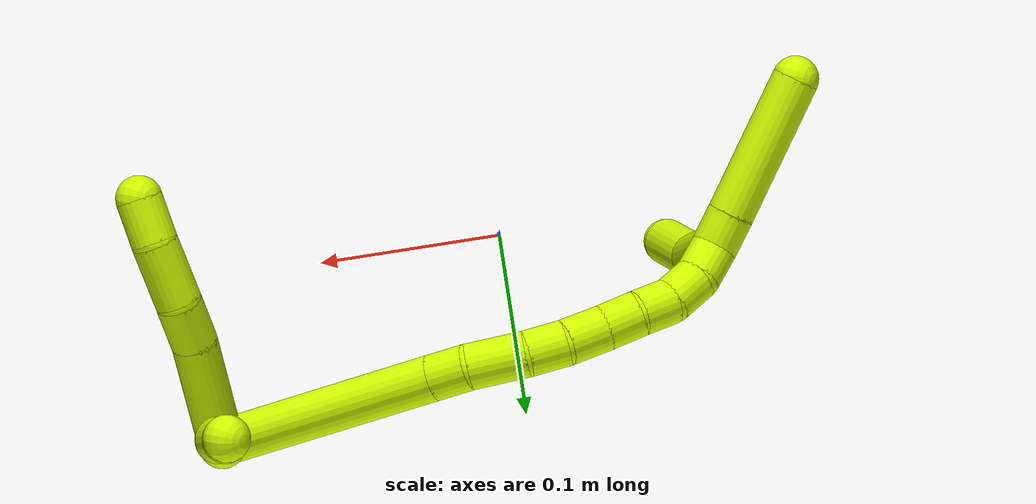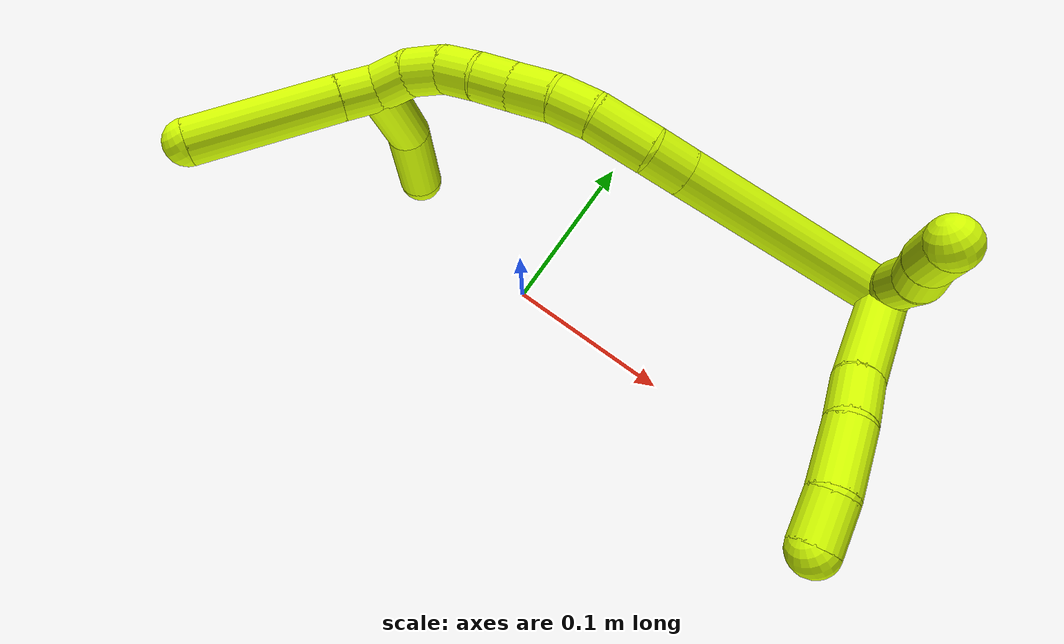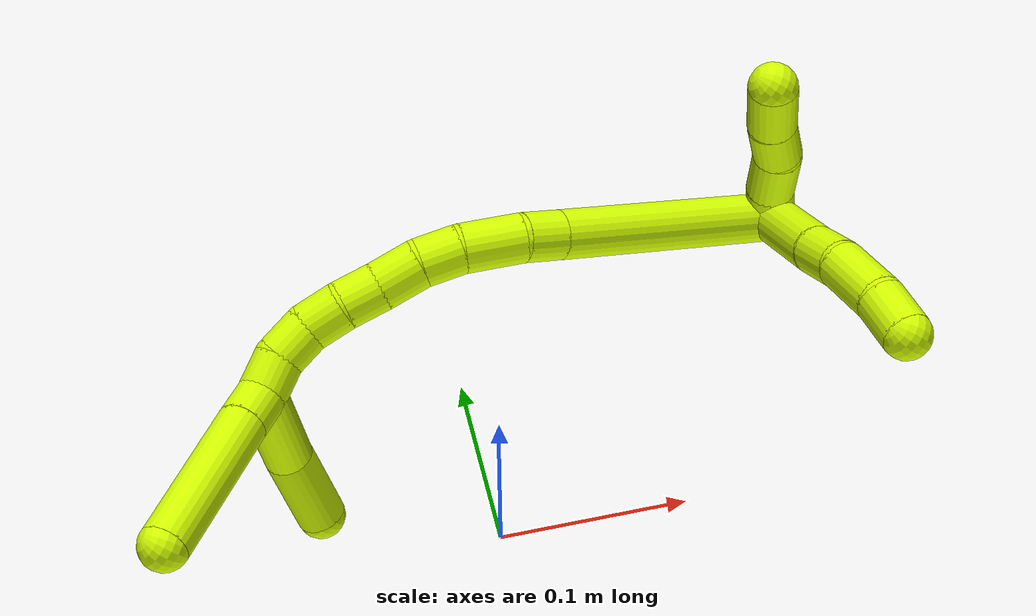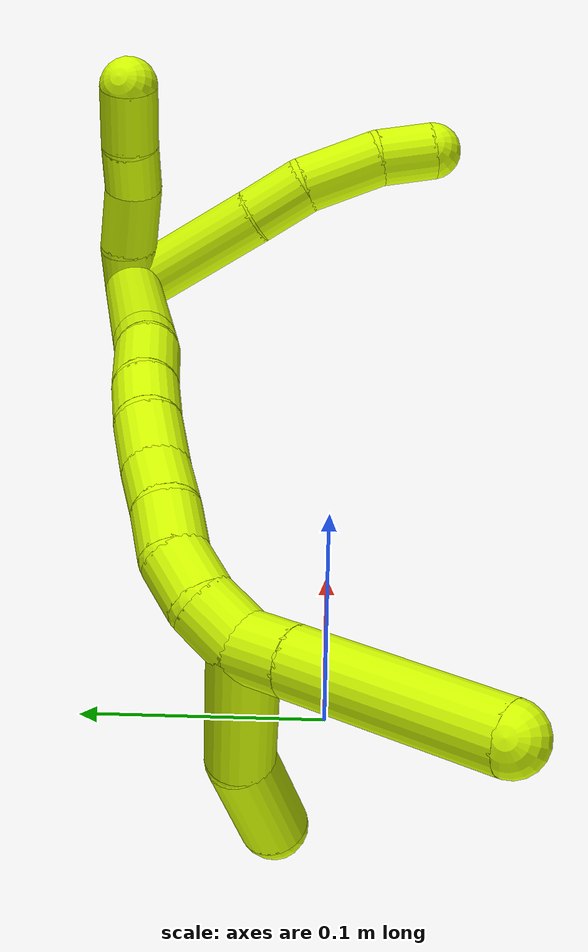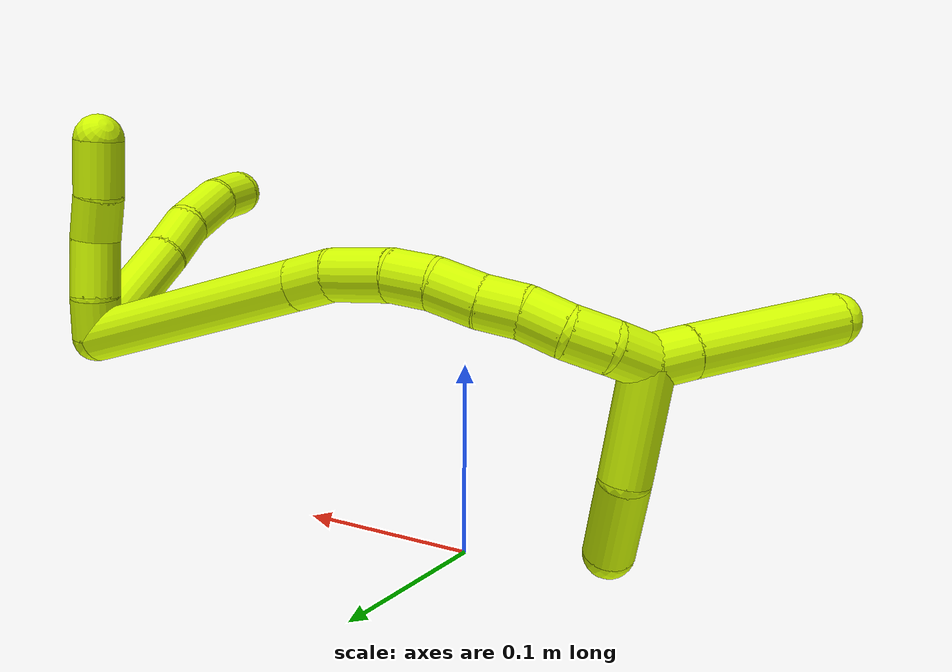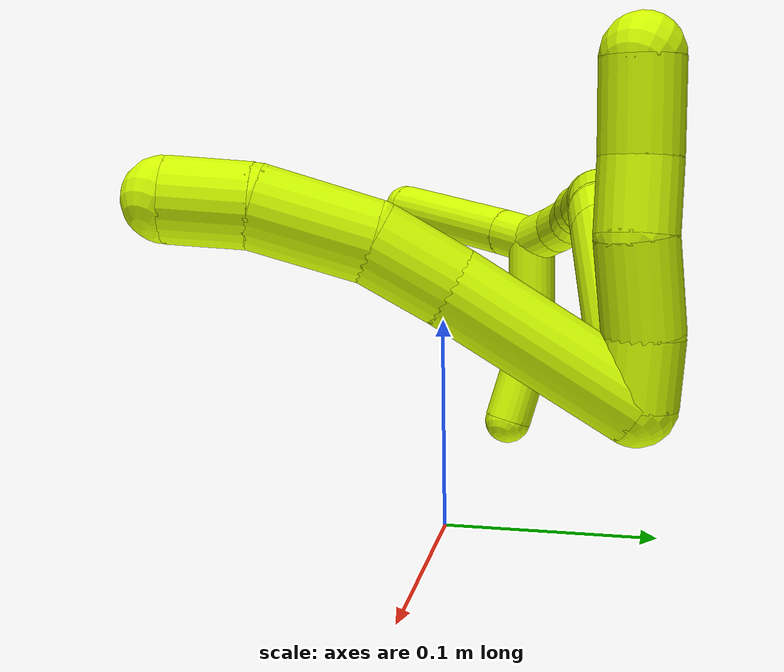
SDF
<sdf version="1.7">
 <world name="default">
  <model name="15">
   <static>0</static>
   <link name="15">
    <collision name="collision-cylinder-e_1_2_8">
     <pose>0.012638 -0.029638 0.002334 1.49219 0.401966 0.372275</pose>
     <geometry><cylinder><radius>0.0125</radius><length>0.064609</length></cylinder></geometry>
     <surface>
      <friction><ode><mu>1.16</mu><mu2>1.16</mu2><slip1>0</slip1><slip2>0</slip2></ode></friction>
      <contact><ode><kp>1e+06</kp><kd>1</kd><max_vel>0</max_vel><min_depth>0.001</min_depth></ode></contact>
     </surface>
    </collision>
    <visual name="visual-cylinder-e_1_2_8">
     <pose>0.012638 -0.029638 0.002334 1.49219 0.401966 0.372275</pose>
     <geometry><cylinder><radius>0.0125</radius><length>0.064609</length></cylinder></geometry>
     <material><ambient>0.835294 1 0 1</ambient></material>
    </visual>
    <collision name="collision-cylinder-e_2_8_9">
     <pose>0.030988 -0.070972 0.004425 1.59167 0.454171 0.463418</pose>
     <geometry><cylinder><radius>0.0125</radius><length>0.026038</length></cylinder></geometry>
     <surface>
      <friction><ode><mu>1.16</mu><mu2>1.16</mu2><slip1>0</slip1><slip2>0</slip2></ode></friction>
      <contact><ode><kp>1e+06</kp><kd>1</kd><max_vel>0</max_vel><min_depth>0.001</min_depth></ode></contact>
     </surface>
    </collision>
    <visual name="visual-cylinder-e_2_8_9">
     <pose>0.030988 -0.070972 0.004425 1.59167 0.454171 0.463418</pose>
     <geometry><cylinder><radius>0.0125</radius><length>0.026038</length></cylinder></geometry>
     <material><ambient>0.835294 1 0 1</ambient></material>
    </visual>
    <collision name="collision-cylinder-e_3_9_10">
     <pose>0.041892 -0.099008 0.000729 1.77896 0.301434 0.370307</pose>
     <geometry><cylinder><radius>0.0125</radius><length>0.034978</length></cylinder></geometry>
     <surface>
      <friction><ode><mu>1.16</mu><mu2>1.16</mu2><slip1>0</slip1><slip2>0</slip2></ode></friction>
      <contact><ode><kp>1e+06</kp><kd>1</kd><max_vel>0</max_vel><min_depth>0.001</min_depth></ode></contact>
     </surface>
    </collision>
    <visual name="visual-cylinder-e_3_9_10">
     <pose>0.041892 -0.099008 0.000729 1.77896 0.301434 0.370307</pose>
     <geometry><cylinder><radius>0.0125</radius><length>0.034978</length></cylinder></geometry>
     <material><ambient>0.835294 1 0 1</ambient></material>
    </visual>
    <collision name="collision-cylinder-e_4_10_6">
     <pose>0.048444 -0.12677 -0.006751 1.90991 0.111811 0.15784</pose>
     <geometry><cylinder><radius>0.0125</radius><length>0.024376</length></cylinder></geometry>
     <surface>
      <friction><ode><mu>1.16</mu><mu2>1.16</mu2><slip1>0</slip1><slip2>0</slip2></ode></friction>
      <contact><ode><kp>1e+06</kp><kd>1</kd><max_vel>0</max_vel><min_depth>0.001</min_depth></ode></contact>
     </surface>
    </collision>
    <visual name="visual-cylinder-e_4_10_6">
     <pose>0.048444 -0.12677 -0.006751 1.90991 0.111811 0.15784</pose>
     <geometry><cylinder><radius>0.0125</radius><length>0.024376</length></cylinder></geometry>
     <material><ambient>0.835294 1 0 1</ambient></material>
    </visual>
    <collision name="collision-cylinder-e_1_2_11">
     <pose>0.007532 -0.001672 0.007187 0.228607 0.79565 0.096414</pose>
     <geometry><cylinder><radius>0.0125</radius><length>0.021088</length></cylinder></geometry>
     <surface>
      <friction><ode><mu>1.16</mu><mu2>1.16</mu2><slip1>0</slip1><slip2>0</slip2></ode></friction>
      <contact><ode><kp>1e+06</kp><kd>1</kd><max_vel>0</max_vel><min_depth>0.001</min_depth></ode></contact>
     </surface>
    </collision>
    <visual name="visual-cylinder-e_1_2_11">
     <pose>0.007532 -0.001672 0.007187 0.228607 0.79565 0.096414</pose>
     <geometry><cylinder><radius>0.0125</radius><length>0.021088</length></cylinder></geometry>
     <material><ambient>0.835294 1 0 1</ambient></material>
    </visual>
    <collision name="collision-cylinder-e_2_11_12">
     <pose>0.02609 -0.007825 0.022681 0.494669 0.862805 0.231427</pose>
     <geometry><cylinder><radius>0.0125</radius><length>0.029028</length></cylinder></geometry>
     <surface>
      <friction><ode><mu>1.16</mu><mu2>1.16</mu2><slip1>0</slip1><slip2>0</slip2></ode></friction>
      <contact><ode><kp>1e+06</kp><kd>1</kd><max_vel>0</max_vel><min_depth>0.001</min_depth></ode></contact>
     </surface>
    </collision>
    <visual name="visual-cylinder-e_2_11_12">
     <pose>0.02609 -0.007825 0.022681 0.494669 0.862805 0.231427</pose>
     <geometry><cylinder><radius>0.0125</radius><length>0.029028</length></cylinder></geometry>
     <material><ambient>0.835294 1 0 1</ambient></material>
    </visual>
    <collision name="collision-cylinder-e_3_12_13">
     <pose>0.043838 -0.014731 0.039488 0.277874 0.650271 0.094209</pose>
     <geometry><cylinder><radius>0.0125</radius><length>0.022209</length></cylinder></geometry>
     <surface>
      <friction><ode><mu>1.16</mu><mu2>1.16</mu2><slip1>0</slip1><slip2>0</slip2></ode></friction>
      <contact><ode><kp>1e+06</kp><kd>1</kd><max_vel>0</max_vel><min_depth>0.001</min_depth></ode></contact>
     </surface>
    </collision>
    <visual name="visual-cylinder-e_3_12_13">
     <pose>0.043838 -0.014731 0.039488 0.277874 0.650271 0.094209</pose>
     <geometry><cylinder><radius>0.0125</radius><length>0.022209</length></cylinder></geometry>
     <material><ambient>0.835294 1 0 1</ambient></material>
    </visual>
    <collision name="collision-cylinder-e_4_13_5">
     <pose>0.060399 -0.020416 0.057156 0.341715 0.790833 0.143788</pose>
     <geometry><cylinder><radius>0.0125</radius><length>0.027674</length></cylinder></geometry>
     <surface>
      <friction><ode><mu>1.16</mu><mu2>1.16</mu2><slip1>0</slip1><slip2>0</slip2></ode></friction>
      <contact><ode><kp>1e+06</kp><kd>1</kd><max_vel>0</max_vel><min_depth>0.001</min_depth></ode></contact>
     </surface>
    </collision>
    <visual name="visual-cylinder-e_4_13_5">
     <pose>0.060399 -0.020416 0.057156 0.341715 0.790833 0.143788</pose>
     <geometry><cylinder><radius>0.0125</radius><length>0.027674</length></cylinder></geometry>
     <material><ambient>0.835294 1 0 1</ambient></material>
    </visual>
    <collision name="collision-cylinder-e_1_2_14">
     <pose>-0.024922 -0.020303 0.052782 0.367218 -0.415091 -0.078169</pose>
     <geometry><cylinder><radius>0.0125</radius><length>0.1236</length></cylinder></geometry>
     <surface>
      <friction><ode><mu>1.16</mu><mu2>1.16</mu2><slip1>0</slip1><slip2>0</slip2></ode></friction>
      <contact><ode><kp>1e+06</kp><kd>1</kd><max_vel>0</max_vel><min_depth>0.001</min_depth></ode></contact>
     </surface>
    </collision>
    <visual name="visual-cylinder-e_1_2_14">
     <pose>-0.024922 -0.020303 0.052782 0.367218 -0.415091 -0.078169</pose>
     <geometry><cylinder><radius>0.0125</radius><length>0.1236</length></cylinder></geometry>
     <material><ambient>0.835294 1 0 1</ambient></material>
    </visual>
    <collision name="collision-cylinder-e_2_14_15">
     <pose>-0.053938 -0.043952 0.114348 0.36391 -0.410695 -0.076607</pose>
     <geometry><cylinder><radius>0.0125</radius><length>0.020505</length></cylinder></geometry>
     <surface>
      <friction><ode><mu>1.16</mu><mu2>1.16</mu2><slip1>0</slip1><slip2>0</slip2></ode></friction>
      <contact><ode><kp>1e+06</kp><kd>1</kd><max_vel>0</max_vel><min_depth>0.001</min_depth></ode></contact>
     </surface>
    </collision>
    <visual name="visual-cylinder-e_2_14_15">
     <pose>-0.053938 -0.043952 0.114348 0.36391 -0.410695 -0.076607</pose>
     <geometry><cylinder><radius>0.0125</radius><length>0.020505</length></cylinder></geometry>
     <material><ambient>0.835294 1 0 1</ambient></material>
    </visual>
    <collision name="collision-cylinder-e_3_15_16">
     <pose>-0.067353 -0.050814 0.135334 0.280549 -0.633245 -0.092462</pose>
     <geometry><cylinder><radius>0.0125</radius><length>0.031505</length></cylinder></geometry>
     <surface>
      <friction><ode><mu>1.16</mu><mu2>1.16</mu2><slip1>0</slip1><slip2>0</slip2></ode></friction>
      <contact><ode><kp>1e+06</kp><kd>1</kd><max_vel>0</max_vel><min_depth>0.001</min_depth></ode></contact>
     </surface>
    </collision>
    <visual name="visual-cylinder-e_3_15_16">
     <pose>-0.067353 -0.050814 0.135334 0.280549 -0.633245 -0.092462</pose>
     <geometry><cylinder><radius>0.0125</radius><length>0.031505</length></cylinder></geometry>
     <material><ambient>0.835294 1 0 1</ambient></material>
    </visual>
    <collision name="collision-cylinder-e_4_16_17">
     <pose>-0.084385 -0.056893 0.154387 0.357955 -0.811747 -0.155177</pose>
     <geometry><cylinder><radius>0.0125</radius><length>0.021254</length></cylinder></geometry>
     <surface>
      <friction><ode><mu>1.16</mu><mu2>1.16</mu2><slip1>0</slip1><slip2>0</slip2></ode></friction>
      <contact><ode><kp>1e+06</kp><kd>1</kd><max_vel>0</max_vel><min_depth>0.001</min_depth></ode></contact>
     </surface>
    </collision>
    <visual name="visual-cylinder-e_4_16_17">
     <pose>-0.084385 -0.056893 0.154387 0.357955 -0.811747 -0.155177</pose>
     <geometry><cylinder><radius>0.0125</radius><length>0.021254</length></cylinder></geometry>
     <material><ambient>0.835294 1 0 1</ambient></material>
    </visual>
    <collision name="collision-cylinder-e_5_17_18">
     <pose>-0.101686 -0.062537 0.166667 0.516206 -0.993761 -0.284371</pose>
     <geometry><cylinder><radius>0.0125</radius><length>0.022888</length></cylinder></geometry>
     <surface>
      <friction><ode><mu>1.16</mu><mu2>1.16</mu2><slip1>0</slip1><slip2>0</slip2></ode></friction>
      <contact><ode><kp>1e+06</kp><kd>1</kd><max_vel>0</max_vel><min_depth>0.001</min_depth></ode></contact>
     </surface>
    </collision>
    <visual name="visual-cylinder-e_5_17_18">
     <pose>-0.101686 -0.062537 0.166667 0.516206 -0.993761 -0.284371</pose>
     <geometry><cylinder><radius>0.0125</radius><length>0.022888</length></cylinder></geometry>
     <material><ambient>0.835294 1 0 1</ambient></material>
    </visual>
    <collision name="collision-cylinder-e_6_18_19">
     <pose>-0.11898 -0.068987 0.177622 0.547594 -0.87209 -0.26025</pose>
     <geometry><cylinder><radius>0.0125</radius><length>0.020121</length></cylinder></geometry>
     <surface>
      <friction><ode><mu>1.16</mu><mu2>1.16</mu2><slip1>0</slip1><slip2>0</slip2></ode></friction>
      <contact><ode><kp>1e+06</kp><kd>1</kd><max_vel>0</max_vel><min_depth>0.001</min_depth></ode></contact>
     </surface>
    </collision>
    <visual name="visual-cylinder-e_6_18_19">
     <pose>-0.11898 -0.068987 0.177622 0.547594 -0.87209 -0.26025</pose>
     <geometry><cylinder><radius>0.0125</radius><length>0.020121</length></cylinder></geometry>
     <material><ambient>0.835294 1 0 1</ambient></material>
    </visual>
    <collision name="collision-cylinder-e_7_19_20">
     <pose>-0.135415 -0.074943 0.187332 0.55351 -1.05766 -0.328962</pose>
     <geometry><cylinder><radius>0.0125</radius><length>0.020046</length></cylinder></geometry>
     <surface>
      <friction><ode><mu>1.16</mu><mu2>1.16</mu2><slip1>0</slip1><slip2>0</slip2></ode></friction>
      <contact><ode><kp>1e+06</kp><kd>1</kd><max_vel>0</max_vel><min_depth>0.001</min_depth></ode></contact>
     </surface>
    </collision>
    <visual name="visual-cylinder-e_7_19_20">
     <pose>-0.135415 -0.074943 0.187332 0.55351 -1.05766 -0.328962</pose>
     <geometry><cylinder><radius>0.0125</radius><length>0.020046</length></cylinder></geometry>
     <material><ambient>0.835294 1 0 1</ambient></material>
    </visual>
    <collision name="collision-cylinder-e_8_20_21">
     <pose>-0.152205 -0.082803 0.194222 1.09694 -0.936614 -0.599509</pose>
     <geometry><cylinder><radius>0.0125</radius><length>0.020004</length></cylinder></geometry>
     <surface>
      <friction><ode><mu>1.16</mu><mu2>1.16</mu2><slip1>0</slip1><slip2>0</slip2></ode></friction>
      <contact><ode><kp>1e+06</kp><kd>1</kd><max_vel>0</max_vel><min_depth>0.001</min_depth></ode></contact>
     </surface>
    </collision>
    <visual name="visual-cylinder-e_8_20_21">
     <pose>-0.152205 -0.082803 0.194222 1.09694 -0.936614 -0.599509</pose>
     <geometry><cylinder><radius>0.0125</radius><length>0.020004</length></cylinder></geometry>
     <material><ambient>0.835294 1 0 1</ambient></material>
    </visual>
    <collision name="collision-cylinder-e_9_21_1">
     <pose>-0.167515 -0.095014 0.19708 1.54873 -0.807532 -0.791706</pose>
     <geometry><cylinder><radius>0.0125</radius><length>0.020076</length></cylinder></geometry>
     <surface>
      <friction><ode><mu>1.16</mu><mu2>1.16</mu2><slip1>0</slip1><slip2>0</slip2></ode></friction>
      <contact><ode><kp>1e+06</kp><kd>1</kd><max_vel>0</max_vel><min_depth>0.001</min_depth></ode></contact>
     </surface>
    </collision>
    <visual name="visual-cylinder-e_9_21_1">
     <pose>-0.167515 -0.095014 0.19708 1.54873 -0.807532 -0.791706</pose>
     <geometry><cylinder><radius>0.0125</radius><length>0.020076</length></cylinder></geometry>
     <material><ambient>0.835294 1 0 1</ambient></material>
    </visual>
    <collision name="collision-cylinder-e_1_1_22">
     <pose>-0.17813 -0.111073 0.200365 1.24 -0.33536 -0.240519</pose>
     <geometry><cylinder><radius>0.0125</radius><length>0.020428</length></cylinder></geometry>
     <surface>
      <friction><ode><mu>1.16</mu><mu2>1.16</mu2><slip1>0</slip1><slip2>0</slip2></ode></friction>
      <contact><ode><kp>1e+06</kp><kd>1</kd><max_vel>0</max_vel><min_depth>0.001</min_depth></ode></contact>
     </surface>
    </collision>
    <visual name="visual-cylinder-e_1_1_22">
     <pose>-0.17813 -0.111073 0.200365 1.24 -0.33536 -0.240519</pose>
     <geometry><cylinder><radius>0.0125</radius><length>0.020428</length></cylinder></geometry>
     <material><ambient>0.835294 1 0 1</ambient></material>
    </visual>
    <collision name="collision-cylinder-e_2_22_4">
     <pose>-0.195013 -0.155876 0.214765 1.26495 -0.346765 -0.255331</pose>
     <geometry><cylinder><radius>0.0125</radius><length>0.079572</length></cylinder></geometry>
     <surface>
      <friction><ode><mu>1.16</mu><mu2>1.16</mu2><slip1>0</slip1><slip2>0</slip2></ode></friction>
      <contact><ode><kp>1e+06</kp><kd>1</kd><max_vel>0</max_vel><min_depth>0.001</min_depth></ode></contact>
     </surface>
    </collision>
    <visual name="visual-cylinder-e_2_22_4">
     <pose>-0.195013 -0.155876 0.214765 1.26495 -0.346765 -0.255331</pose>
     <geometry><cylinder><radius>0.0125</radius><length>0.079572</length></cylinder></geometry>
     <material><ambient>0.835294 1 0 1</ambient></material>
    </visual>
    <collision name="collision-cylinder-e_1_1_23">
     <pose>-0.192904 -0.094675 0.177196 -2.79327 -0.704964 2.24929</pose>
     <geometry><cylinder><radius>0.0125</radius><length>0.055976</length></cylinder></geometry>
     <surface>
      <friction><ode><mu>1.16</mu><mu2>1.16</mu2><slip1>0</slip1><slip2>0</slip2></ode></friction>
      <contact><ode><kp>1e+06</kp><kd>1</kd><max_vel>0</max_vel><min_depth>0.001</min_depth></ode></contact>
     </surface>
    </collision>
    <visual name="visual-cylinder-e_1_1_23">
     <pose>-0.192904 -0.094675 0.177196 -2.79327 -0.704964 2.24929</pose>
     <geometry><cylinder><radius>0.0125</radius><length>0.055976</length></cylinder></geometry>
     <material><ambient>0.835294 1 0 1</ambient></material>
    </visual>
    <collision name="collision-cylinder-e_2_23_3">
     <pose>-0.22311 -0.087825 0.138757 3.11845 -0.580357 -3.06413</pose>
     <geometry><cylinder><radius>0.0125</radius><length>0.044024</length></cylinder></geometry>
     <surface>
      <friction><ode><mu>1.16</mu><mu2>1.16</mu2><slip1>0</slip1><slip2>0</slip2></ode></friction>
      <contact><ode><kp>1e+06</kp><kd>1</kd><max_vel>0</max_vel><min_depth>0.001</min_depth></ode></contact>
     </surface>
    </collision>
    <visual name="visual-cylinder-e_2_23_3">
     <pose>-0.22311 -0.087825 0.138757 3.11845 -0.580357 -3.06413</pose>
     <geometry><cylinder><radius>0.0125</radius><length>0.044024</length></cylinder></geometry>
     <material><ambient>0.835294 1 0 1</ambient></material>
    </visual>
    <collision name="collision-sphere-3">
     <pose>-0.23518 -0.088251 0.120354 0 -0 0</pose>
     <geometry><sphere><radius>0.0125</radius></sphere></geometry>
     <surface>
      <friction><ode><mu>1.16</mu><mu2>1.16</mu2><slip1>0</slip1><slip2>0</slip2></ode></friction>
      <contact><ode><kp>1e+06</kp><kd>1</kd><max_vel>0</max_vel><min_depth>0.001</min_depth></ode></contact>
     </surface>
    </collision>
    <visual name="visual-sphere-3">
     <pose>-0.23518 -0.088251 0.120354 0 -0 0</pose>
     <geometry><sphere><radius>0.0125</radius></sphere></geometry>
     <material><ambient>0.835294 1 0 1</ambient></material>
    </visual>
    <collision name="collision-sphere-23">
     <pose>-0.211041 -0.087399 0.15716 0 -0 0</pose>
     <geometry><sphere><radius>0.0125</radius></sphere></geometry>
     <surface>
      <friction><ode><mu>1.16</mu><mu2>1.16</mu2><slip1>0</slip1><slip2>0</slip2></ode></friction>
      <contact><ode><kp>1e+06</kp><kd>1</kd><max_vel>0</max_vel><min_depth>0.001</min_depth></ode></contact>
     </surface>
    </collision>
    <visual name="visual-sphere-23">
     <pose>-0.211041 -0.087399 0.15716 0 -0 0</pose>
     <geometry><sphere><radius>0.0125</radius></sphere></geometry>
     <material><ambient>0.835294 1 0 1</ambient></material>
    </visual>
    <collision name="collision-sphere-4">
     <pose>-0.208534 -0.191558 0.226031 0 -0 0</pose>
     <geometry><sphere><radius>0.0125</radius></sphere></geometry>
     <surface>
      <friction><ode><mu>1.16</mu><mu2>1.16</mu2><slip1>0</slip1><slip2>0</slip2></ode></friction>
      <contact><ode><kp>1e+06</kp><kd>1</kd><max_vel>0</max_vel><min_depth>0.001</min_depth></ode></contact>
     </surface>
    </collision>
    <visual name="visual-sphere-4">
     <pose>-0.208534 -0.191558 0.226031 0 -0 0</pose>
     <geometry><sphere><radius>0.0125</radius></sphere></geometry>
     <material><ambient>0.835294 1 0 1</ambient></material>
    </visual>
    <collision name="collision-sphere-22">
     <pose>-0.181491 -0.120195 0.203498 0 -0 0</pose>
     <geometry><sphere><radius>0.0125</radius></sphere></geometry>
     <surface>
      <friction><ode><mu>1.16</mu><mu2>1.16</mu2><slip1>0</slip1><slip2>0</slip2></ode></friction>
      <contact><ode><kp>1e+06</kp><kd>1</kd><max_vel>0</max_vel><min_depth>0.001</min_depth></ode></contact>
     </surface>
    </collision>
    <visual name="visual-sphere-22">
     <pose>-0.181491 -0.120195 0.203498 0 -0 0</pose>
     <geometry><sphere><radius>0.0125</radius></sphere></geometry>
     <material><ambient>0.835294 1 0 1</ambient></material>
    </visual>
    <collision name="collision-sphere-1">
     <pose>-0.174768 -0.101951 0.197233 0 -0 0</pose>
     <geometry><sphere><radius>0.0125</radius></sphere></geometry>
     <surface>
      <friction><ode><mu>1.16</mu><mu2>1.16</mu2><slip1>0</slip1><slip2>0</slip2></ode></friction>
      <contact><ode><kp>1e+06</kp><kd>1</kd><max_vel>0</max_vel><min_depth>0.001</min_depth></ode></contact>
     </surface>
    </collision>
    <visual name="visual-sphere-1">
     <pose>-0.174768 -0.101951 0.197233 0 -0 0</pose>
     <geometry><sphere><radius>0.0125</radius></sphere></geometry>
     <material><ambient>0.835294 1 0 1</ambient></material>
    </visual>
    <collision name="collision-sphere-21">
     <pose>-0.160262 -0.088076 0.196927 0 -0 0</pose>
     <geometry><sphere><radius>0.0125</radius></sphere></geometry>
     <surface>
      <friction><ode><mu>1.16</mu><mu2>1.16</mu2><slip1>0</slip1><slip2>0</slip2></ode></friction>
      <contact><ode><kp>1e+06</kp><kd>1</kd><max_vel>0</max_vel><min_depth>0.001</min_depth></ode></contact>
     </surface>
    </collision>
    <visual name="visual-sphere-21">
     <pose>-0.160262 -0.088076 0.196927 0 -0 0</pose>
     <geometry><sphere><radius>0.0125</radius></sphere></geometry>
     <material><ambient>0.835294 1 0 1</ambient></material>
    </visual>
    <collision name="collision-sphere-11">
     <pose>0.015064 -0.003344 0.014374 0 -0 0</pose>
     <geometry><sphere><radius>0.0125</radius></sphere></geometry>
     <surface>
      <friction><ode><mu>1.16</mu><mu2>1.16</mu2><slip1>0</slip1><slip2>0</slip2></ode></friction>
      <contact><ode><kp>1e+06</kp><kd>1</kd><max_vel>0</max_vel><min_depth>0.001</min_depth></ode></contact>
     </surface>
    </collision>
    <visual name="visual-sphere-11">
     <pose>0.015064 -0.003344 0.014374 0 -0 0</pose>
     <geometry><sphere><radius>0.0125</radius></sphere></geometry>
     <material><ambient>0.835294 1 0 1</ambient></material>
    </visual>
    <collision name="collision-sphere-6">
     <pose>0.049804 -0.138192 -0.01078 0 -0 0</pose>
     <geometry><sphere><radius>0.0125</radius></sphere></geometry>
     <surface>
      <friction><ode><mu>1.16</mu><mu2>1.16</mu2><slip1>0</slip1><slip2>0</slip2></ode></friction>
      <contact><ode><kp>1e+06</kp><kd>1</kd><max_vel>0</max_vel><min_depth>0.001</min_depth></ode></contact>
     </surface>
    </collision>
    <visual name="visual-sphere-6">
     <pose>0.049804 -0.138192 -0.01078 0 -0 0</pose>
     <geometry><sphere><radius>0.0125</radius></sphere></geometry>
     <material><ambient>0.835294 1 0 1</ambient></material>
    </visual>
    <collision name="collision-sphere-10">
     <pose>0.047085 -0.115348 -0.002722 0 -0 0</pose>
     <geometry><sphere><radius>0.0125</radius></sphere></geometry>
     <surface>
      <friction><ode><mu>1.16</mu><mu2>1.16</mu2><slip1>0</slip1><slip2>0</slip2></ode></friction>
      <contact><ode><kp>1e+06</kp><kd>1</kd><max_vel>0</max_vel><min_depth>0.001</min_depth></ode></contact>
     </surface>
    </collision>
    <visual name="visual-sphere-10">
     <pose>0.047085 -0.115348 -0.002722 0 -0 0</pose>
     <geometry><sphere><radius>0.0125</radius></sphere></geometry>
     <material><ambient>0.835294 1 0 1</ambient></material>
    </visual>
    <collision name="collision-sphere-9">
     <pose>0.0367 -0.082669 0.00418 0 -0 0</pose>
     <geometry><sphere><radius>0.0125</radius></sphere></geometry>
     <surface>
      <friction><ode><mu>1.16</mu><mu2>1.16</mu2><slip1>0</slip1><slip2>0</slip2></ode></friction>
      <contact><ode><kp>1e+06</kp><kd>1</kd><max_vel>0</max_vel><min_depth>0.001</min_depth></ode></contact>
     </surface>
    </collision>
    <visual name="visual-sphere-9">
     <pose>0.0367 -0.082669 0.00418 0 -0 0</pose>
     <geometry><sphere><radius>0.0125</radius></sphere></geometry>
     <material><ambient>0.835294 1 0 1</ambient></material>
    </visual>
    <collision name="collision-sphere-2">
     <geometry><sphere><radius>0.0125</radius></sphere></geometry>
     <surface>
      <friction><ode><mu>1.16</mu><mu2>1.16</mu2><slip1>0</slip1><slip2>0</slip2></ode></friction>
      <contact><ode><kp>1e+06</kp><kd>1</kd><max_vel>0</max_vel><min_depth>0.001</min_depth></ode></contact>
     </surface>
    </collision>
    <visual name="visual-sphere-2">
     <geometry><sphere><radius>0.0125</radius></sphere></geometry>
     <material><ambient>0.835294 1 0 1</ambient></material>
    </visual>
    <collision name="collision-sphere-19">
     <pose>-0.126683 -0.072357 0.183146 0 -0 0</pose>
     <geometry><sphere><radius>0.0125</radius></sphere></geometry>
     <surface>
      <friction><ode><mu>1.16</mu><mu2>1.16</mu2><slip1>0</slip1><slip2>0</slip2></ode></friction>
      <contact><ode><kp>1e+06</kp><kd>1</kd><max_vel>0</max_vel><min_depth>0.001</min_depth></ode></contact>
     </surface>
    </collision>
    <visual name="visual-sphere-19">
     <pose>-0.126683 -0.072357 0.183146 0 -0 0</pose>
     <geometry><sphere><radius>0.0125</radius></sphere></geometry>
     <material><ambient>0.835294 1 0 1</ambient></material>
    </visual>
    <collision name="collision-sphere-8">
     <pose>0.025277 -0.059276 0.004669 0 -0 0</pose>
     <geometry><sphere><radius>0.0125</radius></sphere></geometry>
     <surface>
      <friction><ode><mu>1.16</mu><mu2>1.16</mu2><slip1>0</slip1><slip2>0</slip2></ode></friction>
      <contact><ode><kp>1e+06</kp><kd>1</kd><max_vel>0</max_vel><min_depth>0.001</min_depth></ode></contact>
     </surface>
    </collision>
    <visual name="visual-sphere-8">
     <pose>0.025277 -0.059276 0.004669 0 -0 0</pose>
     <geometry><sphere><radius>0.0125</radius></sphere></geometry>
     <material><ambient>0.835294 1 0 1</ambient></material>
    </visual>
    <collision name="collision-sphere-12">
     <pose>0.037116 -0.012306 0.030988 0 -0 0</pose>
     <geometry><sphere><radius>0.0125</radius></sphere></geometry>
     <surface>
      <friction><ode><mu>1.16</mu><mu2>1.16</mu2><slip1>0</slip1><slip2>0</slip2></ode></friction>
      <contact><ode><kp>1e+06</kp><kd>1</kd><max_vel>0</max_vel><min_depth>0.001</min_depth></ode></contact>
     </surface>
    </collision>
    <visual name="visual-sphere-12">
     <pose>0.037116 -0.012306 0.030988 0 -0 0</pose>
     <geometry><sphere><radius>0.0125</radius></sphere></geometry>
     <material><ambient>0.835294 1 0 1</ambient></material>
    </visual>
    <collision name="collision-sphere-13">
     <pose>0.050561 -0.017155 0.047987 0 -0 0</pose>
     <geometry><sphere><radius>0.0125</radius></sphere></geometry>
     <surface>
      <friction><ode><mu>1.16</mu><mu2>1.16</mu2><slip1>0</slip1><slip2>0</slip2></ode></friction>
      <contact><ode><kp>1e+06</kp><kd>1</kd><max_vel>0</max_vel><min_depth>0.001</min_depth></ode></contact>
     </surface>
    </collision>
    <visual name="visual-sphere-13">
     <pose>0.050561 -0.017155 0.047987 0 -0 0</pose>
     <geometry><sphere><radius>0.0125</radius></sphere></geometry>
     <material><ambient>0.835294 1 0 1</ambient></material>
    </visual>
    <collision name="collision-sphere-5">
     <pose>0.070236 -0.023677 0.066324 0 -0 0</pose>
     <geometry><sphere><radius>0.0125</radius></sphere></geometry>
     <surface>
      <friction><ode><mu>1.16</mu><mu2>1.16</mu2><slip1>0</slip1><slip2>0</slip2></ode></friction>
      <contact><ode><kp>1e+06</kp><kd>1</kd><max_vel>0</max_vel><min_depth>0.001</min_depth></ode></contact>
     </surface>
    </collision>
    <visual name="visual-sphere-5">
     <pose>0.070236 -0.023677 0.066324 0 -0 0</pose>
     <geometry><sphere><radius>0.0125</radius></sphere></geometry>
     <material><ambient>0.835294 1 0 1</ambient></material>
    </visual>
    <collision name="collision-sphere-14">
     <pose>-0.049845 -0.040607 0.105563 0 -0 0</pose>
     <geometry><sphere><radius>0.0125</radius></sphere></geometry>
     <surface>
      <friction><ode><mu>1.16</mu><mu2>1.16</mu2><slip1>0</slip1><slip2>0</slip2></ode></friction>
      <contact><ode><kp>1e+06</kp><kd>1</kd><max_vel>0</max_vel><min_depth>0.001</min_depth></ode></contact>
     </surface>
    </collision>
    <visual name="visual-sphere-14">
     <pose>-0.049845 -0.040607 0.105563 0 -0 0</pose>
     <geometry><sphere><radius>0.0125</radius></sphere></geometry>
     <material><ambient>0.835294 1 0 1</ambient></material>
    </visual>
    <collision name="collision-sphere-15">
     <pose>-0.058031 -0.047298 0.123132 0 -0 0</pose>
     <geometry><sphere><radius>0.0125</radius></sphere></geometry>
     <surface>
      <friction><ode><mu>1.16</mu><mu2>1.16</mu2><slip1>0</slip1><slip2>0</slip2></ode></friction>
      <contact><ode><kp>1e+06</kp><kd>1</kd><max_vel>0</max_vel><min_depth>0.001</min_depth></ode></contact>
     </surface>
    </collision>
    <visual name="visual-sphere-15">
     <pose>-0.058031 -0.047298 0.123132 0 -0 0</pose>
     <geometry><sphere><radius>0.0125</radius></sphere></geometry>
     <material><ambient>0.835294 1 0 1</ambient></material>
    </visual>
    <collision name="collision-sphere-16">
     <pose>-0.076675 -0.05433 0.147536 0 -0 0</pose>
     <geometry><sphere><radius>0.0125</radius></sphere></geometry>
     <surface>
      <friction><ode><mu>1.16</mu><mu2>1.16</mu2><slip1>0</slip1><slip2>0</slip2></ode></friction>
      <contact><ode><kp>1e+06</kp><kd>1</kd><max_vel>0</max_vel><min_depth>0.001</min_depth></ode></contact>
     </surface>
    </collision>
    <visual name="visual-sphere-16">
     <pose>-0.076675 -0.05433 0.147536 0 -0 0</pose>
     <geometry><sphere><radius>0.0125</radius></sphere></geometry>
     <material><ambient>0.835294 1 0 1</ambient></material>
    </visual>
    <collision name="collision-sphere-17">
     <pose>-0.092095 -0.059455 0.161237 0 -0 0</pose>
     <geometry><sphere><radius>0.0125</radius></sphere></geometry>
     <surface>
      <friction><ode><mu>1.16</mu><mu2>1.16</mu2><slip1>0</slip1><slip2>0</slip2></ode></friction>
      <contact><ode><kp>1e+06</kp><kd>1</kd><max_vel>0</max_vel><min_depth>0.001</min_depth></ode></contact>
     </surface>
    </collision>
    <visual name="visual-sphere-17">
     <pose>-0.092095 -0.059455 0.161237 0 -0 0</pose>
     <geometry><sphere><radius>0.0125</radius></sphere></geometry>
     <material><ambient>0.835294 1 0 1</ambient></material>
    </visual>
    <collision name="collision-sphere-18">
     <pose>-0.111277 -0.065618 0.172097 0 -0 0</pose>
     <geometry><sphere><radius>0.0125</radius></sphere></geometry>
     <surface>
      <friction><ode><mu>1.16</mu><mu2>1.16</mu2><slip1>0</slip1><slip2>0</slip2></ode></friction>
      <contact><ode><kp>1e+06</kp><kd>1</kd><max_vel>0</max_vel><min_depth>0.001</min_depth></ode></contact>
     </surface>
    </collision>
    <visual name="visual-sphere-18">
     <pose>-0.111277 -0.065618 0.172097 0 -0 0</pose>
     <geometry><sphere><radius>0.0125</radius></sphere></geometry>
     <material><ambient>0.835294 1 0 1</ambient></material>
    </visual>
    <collision name="collision-sphere-20">
     <pose>-0.144147 -0.07753 0.191518 0 -0 0</pose>
     <geometry><sphere><radius>0.0125</radius></sphere></geometry>
     <surface>
      <friction><ode><mu>1.16</mu><mu2>1.16</mu2><slip1>0</slip1><slip2>0</slip2></ode></friction>
      <contact><ode><kp>1e+06</kp><kd>1</kd><max_vel>0</max_vel><min_depth>0.001</min_depth></ode></contact>
     </surface>
    </collision>
    <visual name="visual-sphere-20">
     <pose>-0.144147 -0.07753 0.191518 0 -0 0</pose>
     <geometry><sphere><radius>0.0125</radius></sphere></geometry>
     <material><ambient>0.835294 1 0 1</ambient></material>
    </visual>
    <inertial>
     <pose>-0.071855 -0.065887 0.10134 0 -0 0</pose>
     <mass>0.75</mass>
     <inertia>
      <ixx>0.000206</ixx>
      <ixy>0</ixy>
      <ixz>0</ixz>
      <iyy>0.000189</iyy>
      <iyz>0</iyz>
      <izz>0.000234</izz>
     </inertia>
    </inertial>
   </link>
   <pose>0.16439 0.090054 0.112098 -0.327237 -0.864569 0.105496</pose>
  </model>
 </world>
</sdf>
